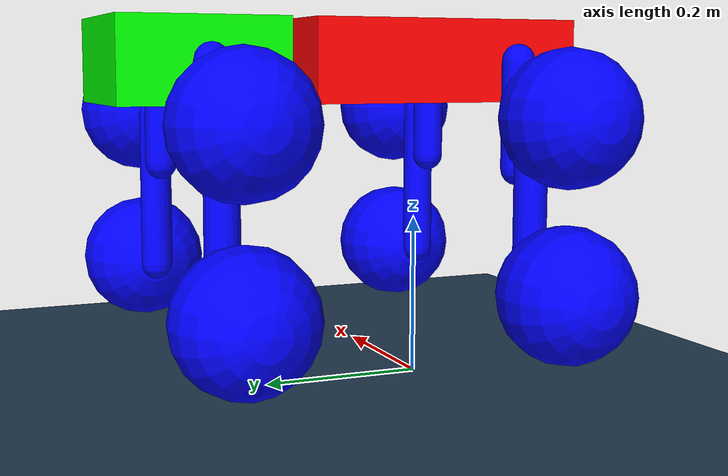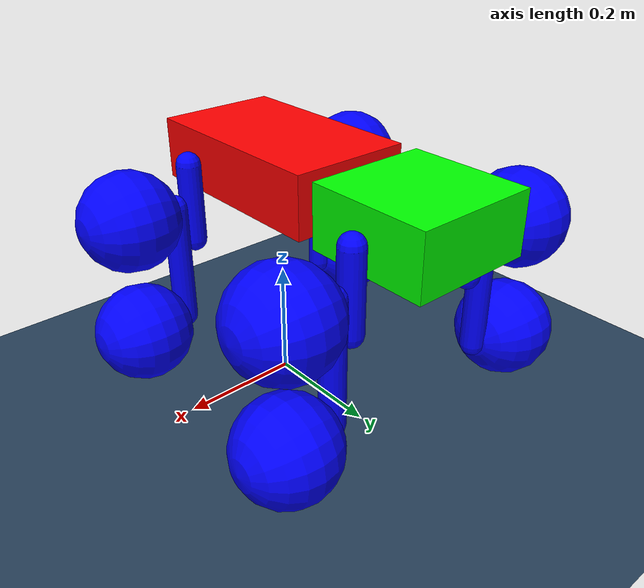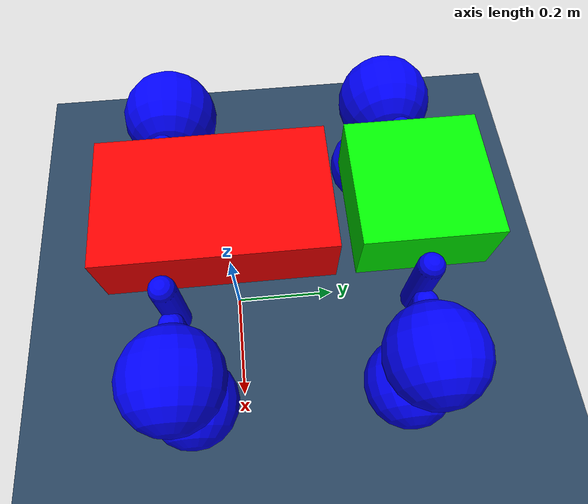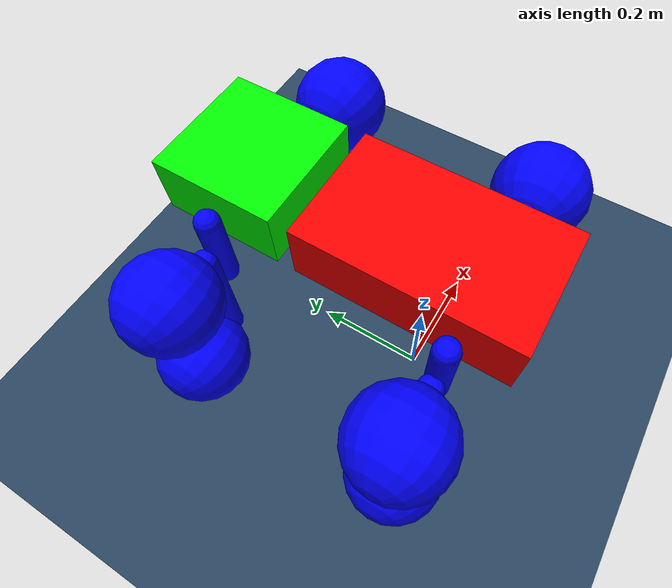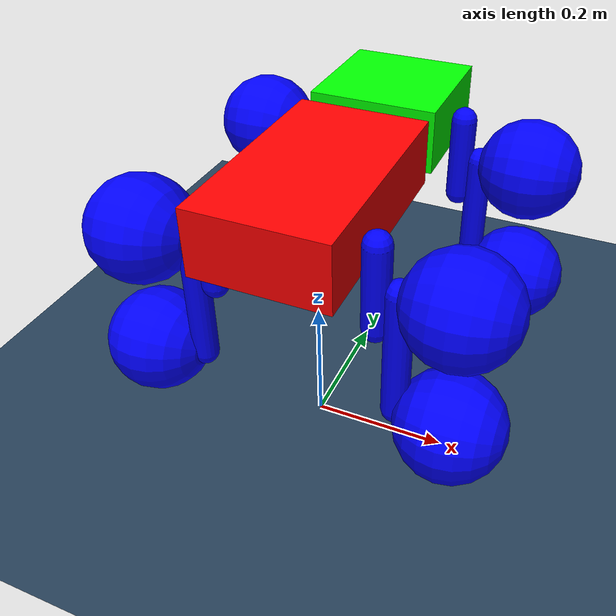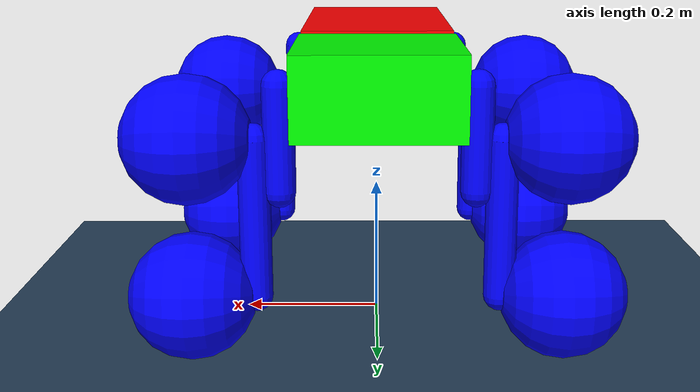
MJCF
<mujoco model="SMALTER Scene">

    <include file="smalter_v1.xml"/>

    <statistic center="0 0 0.1" extent="0.8"/>

    <visual>
      <headlight diffuse="0.6 0.6 0.6" ambient="0.3 0.3 0.3" specular="0 0 0"/>
      <rgba haze="0.15 0.25 0.35 1"/>
      <global azimuth="120" elevation="-20"/>
    </visual>

    <asset>
      <texture type="skybox" builtin="gradient" rgb1="0.3 0.5 0.7" rgb2="0 0 0" width="512" height="3072"/>
      <texture type="2d" name="groundplane" builtin="checker" mark="edge" rgb1="0.2 0.3 0.4" rgb2="0.1 0.2 0.3"
        markrgb="0.8 0.8 0.8" width="300" height="300"/>
      <material name="groundplane" texture="groundplane" texuniform="true" texrepeat="5 5" reflectance="0.2"/>
    </asset>

    <worldbody>
      <light pos="0 0 5" dir="0 0 -1" directional="true"/>
      <geom name="floor" size="0 0 0.05" type="plane" material="groundplane" friction="1 0.005 0.0001"/>
    </worldbody>

  </mujoco>

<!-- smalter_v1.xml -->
<mujoco>

    <worldbody>
        <light diffuse=".5 .5 .5" pos="0 0 3" dir="0 0 -1"/>
        <!-- Rear Body Section -->
        <body name="rearBody" pos="0 0 0.4">
        <geom  type="box" size="0.1 0.17 0.05" rgba="1 0 0 1"/>
        <joint type = "free"/>
            <!-- Front Body Section -->
            <body name="frontBody" pos = "0 .3 0">
            <joint type = "hinge" axis = "0 1 0" name = "waist" damping="4" stiffness = "8"/>
            <geom type="box" size="0.1 0.1 0.05" rgba="0 1 0 1"/>
                <!-- Font Right Leg-->
                <!-- Front Right Thigh -->

                <body name="fr_thigh" pos=".12 0 -0.065">
                <joint type="hinge" axis="1 0 0" pos = "0 0 .065" name="fr_hip" damping="4"/>
                <geom type="capsule" size="0.02 0.065" rgba="0 0 1 1"/>
                <!-- Front Right Calf -->
                    <body name="fr_calf" pos=".0315 0 -0.1">
                    <geom type="capsule" size="0.02 0.1" rgba="0 0 1 1"/>
                    <joint type="hinge" axis="1 0 0" name="fr_knee" damping="4"/>
                        <!-- Front Right Wheel 1 -->
                        <body name="fr_wheel1" pos=".08 0 -0.1" zaxis = "1 0 0">
                            <geom type="sphere" size="0.08" rgba="0 0 1 1" friction = "0.4 0.005 0.005" solref="0.1 1"/>
                            <joint type="hinge" axis="0 0 1" name="fr_wheel1_joint" damping="4"/>
                        </body>
                        <!-- Front Right Wheel 2 -->
                        <body name="fr_wheel2" pos=".08 0 0.1" zaxis = "1 0 0">
                            <geom type="sphere" size="0.08" rgba="0 0 1 1" friction = "0.4 0.005 0.005" solref="0.1 1"/>
                            <joint type="hinge" axis="0 0 1" name="fr_wheel2_joint" damping="4"/>
                        </body>
                    </body>
                </body>
                <!-- Front Left Leg -->
                <!-- Front Left Thigh -->
                <body name="fl_thigh" pos="-.12 0 -0.065">
                <joint type="hinge" axis="1 0 0" pos = "0 0 .065" name="fl_hip" damping="4"/>
                <geom type="capsule" size="0.02 0.065" rgba="0 0 1 1"/>
                    <!-- Front Left Calf -->
                    <body name="fl_calf" pos="-.0315 0 -0.1">
                    <geom type="capsule" size="0.02 0.1" rgba="0 0 1 1"/>
                    <joint type="hinge" axis="1 0 0" name="fl_knee" damping="4"/>
                        <!-- Front Left Wheel 1 -->
                        <body name="fl_wheel1" pos="-.08 0 -0.1" zaxis = "1 0 0">
                        <geom type="sphere" size="0.08" rgba="0 0 1 1" friction = "0.4 0.005 0.005" solref="0.1 1"/>
                        <joint type="hinge" axis="0 0 1" name="fl_wheel1_joint" damping="4"/>
                        </body>
                        <!-- Front Left Wheel 2 -->
                        <body name="fl_wheel2" pos="-.08 0 0.1" zaxis = "1 0 0">
                        <geom type="sphere" size="0.08" rgba="0 0 1 1" friction = "0.4 0.005 0.005" solref="0.1 1"/>
                        <joint type="hinge" axis="0 0 1" name="fl_wheel2_joint" damping="4"/>
                        </body>
                    </body>
                </body>
            </body>

            <!-- Back Right Leg -->
            <!-- Back Right Thigh -->
            <body name="br_thigh" pos=".12 -0.08 -0.065">
            <joint type="hinge" axis="1 0 0" pos = "0 0 .065" name="br_hip" damping="4"/>
             <geom type="capsule" size="0.02 0.065" rgba="0 0 1 1"/>
                <!-- Back Right Calf -->
                <body name="br_calf" pos=".0315 0 -0.1">
                <geom type="capsule" size="0.02 0.1" rgba="0 0 1 1"/>
                <joint type="hinge" axis="1 0 0" name="br_knee" damping="4"/>
                    <!-- Back Right Wheel 1 -->
                    <body name="br_wheel1" pos=".08 0 -0.1" zaxis = "1 0 0">
                    <geom type="sphere" size="0.08" rgba="0 0 1 1" friction = "0.4 0.005 0.005" solref="0.1 1"/>
                    <joint type="hinge" axis="0 0 1" name="br_wheel1_joint" damping="4"/>
                    </body>
                    <!-- Back Right Wheel 2 -->
                    <body name="br_wheel2" pos=".08 0 0.1" zaxis = "1 0 0">
                    <geom type="sphere" size="0.08" rgba="0 0 1 1" friction = "0.4 0.005 0.005" solref="0.1 1"/>
                    <joint type="hinge" axis="0 0 1" name="br_wheel2_joint" damping="4"/>
                    </body>
                </body>
                </body>

            <!-- Back Left Leg -->
            <!-- Back Left Thigh -->
            <body name="bl_thigh" pos="-.12 -0.08 -0.065">
            <joint type="hinge" axis="1 0 0" pos = "0 0 .065" name="bl_hip" damping="4"/>
            <geom type="capsule" size="0.02 0.065" rgba="0 0 1 1"/>
                <!-- Back Left Calf -->
                <body name="bl_calf" pos="-.0315 0 -0.1">
                <geom type="capsule" size="0.02 0.1" rgba="0 0 1 1"/>
                <joint type="hinge" axis="1 0 0" name="bl_knee" damping="4"/>
                    <!-- Back Left Wheel 1 -->
                    <body name="bl_wheel1" pos="-.08 0 -0.1" zaxis = "1 0 0">
                    <geom type="sphere" size="0.08" rgba="0 0 1 1" friction = "0.4 0.005 0.005" solref="0.1 1"/>
                    <joint type="hinge" axis="0 0 1" name="bl_wheel1_joint" damping="4"/>
                    </body>
                    <!-- Back Left Wheel 2 -->
                    <body name="bl_wheel2" pos="-.08 0 0.1" zaxis = "1 0 0">
                    <geom type="sphere" size="0.08" rgba="0 0 1 1" friction = "0.4 0.005 0.005" solref="0.1 1"/>
                    <joint type="hinge" axis="0 0 1" name="bl_wheel2_joint" damping="4"/>
                    </body>
                </body>
            </body>

        </body>
    </worldbody>
    <!-- Defining the actuators -->
    <actuator>
        <position joint="fr_hip" kp="30"/>
        <position joint="fr_knee" kp="30"/>
        <position joint="fr_wheel1_joint" kp="30"/>
        <position joint="fr_wheel2_joint" kp="30"/>
        <position joint="fl_hip" kp="30"/>
        <position joint="fl_knee" kp="30"/>
        <position joint="fl_wheel1_joint" kp="30"/>
        <position joint="fl_wheel2_joint" kp="30"/>
        <position joint="br_hip" kp="30"/>
        <position joint="br_knee" kp="30"/>
        <position joint="br_wheel1_joint" kp="30"/>
        <position joint="br_wheel2_joint" kp="30"/>
        <position joint="bl_hip" kp="30"/>
        <position joint="bl_knee" kp="30"/>
        <position joint="bl_wheel1_joint" kp="30"/>
        <position joint="bl_wheel2_joint" kp="30"/>
    </actuator>

    <keyframe>
        <key name="home"
            qpos="0 0 0.28 1 0 0 0
                0.0
                0.0 0.785 0.0 0.0
                0.0 0.785 0.0 0.0
                0.0 0.785 0.0 0.0
                0.0 0.785 0.0 0.0"
            ctrl="0 0 0 0
                0 0 0 0
                0 0 0 0
                0 0 0 0"/>
    </keyframe>
</mujoco>
